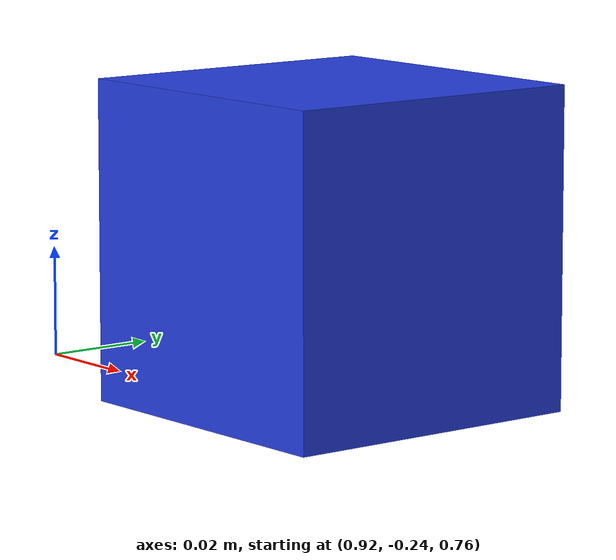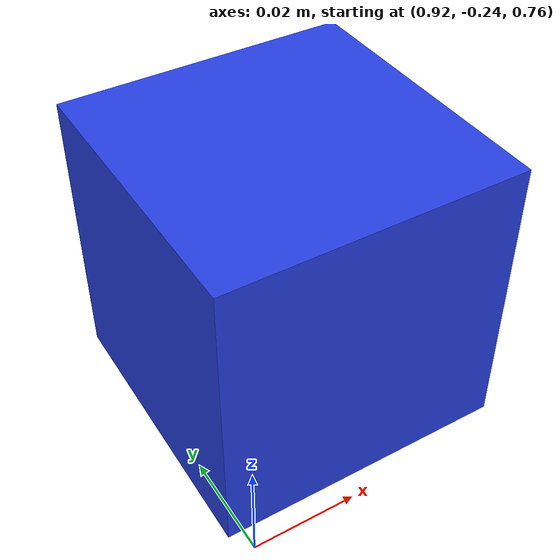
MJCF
<mujoco model="blue_block">
  <worldbody>
    <!-- 6 cm cube on the table, offset from the red block -->
    <body name="blue_block" pos="0.95 -0.2 0.78">
      <geom type="box" size="0.03 0.03 0.03"
            rgba="0.15 0.25 0.9 1" mass="0.15" condim="6" friction="1 0.005 0.0001"/>
    </body>
  </worldbody>
</mujoco>
